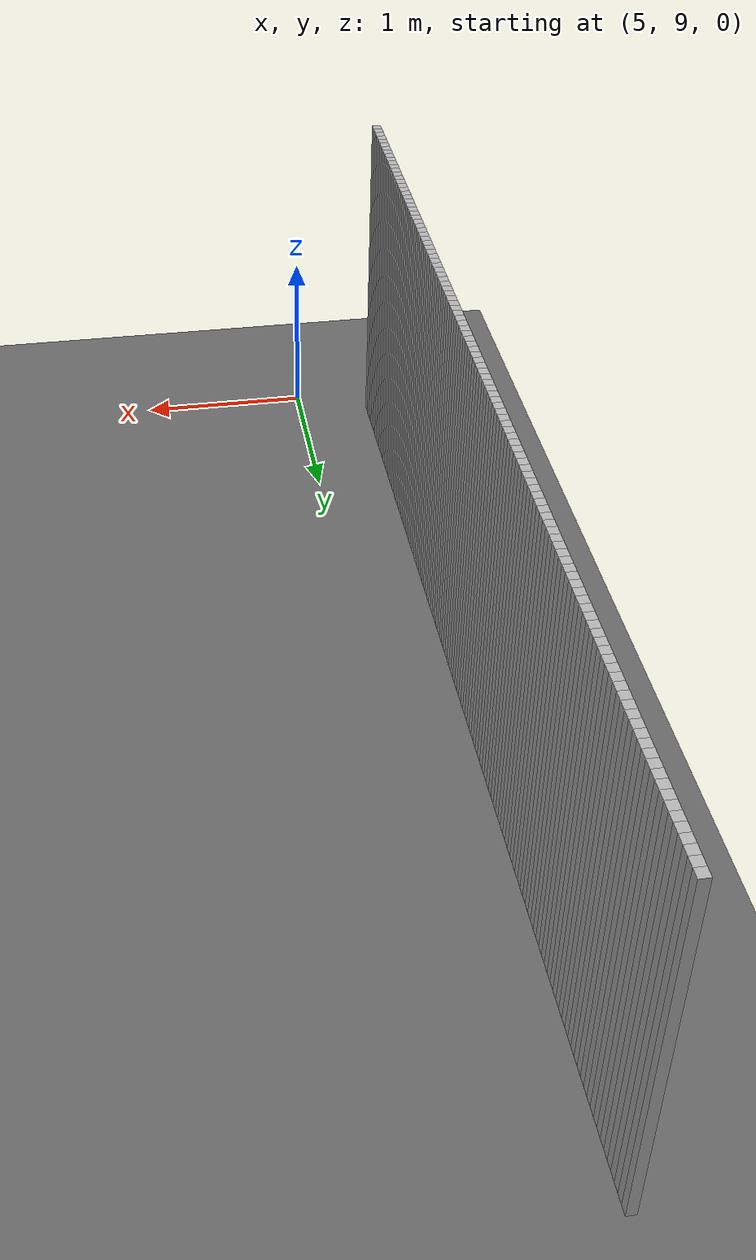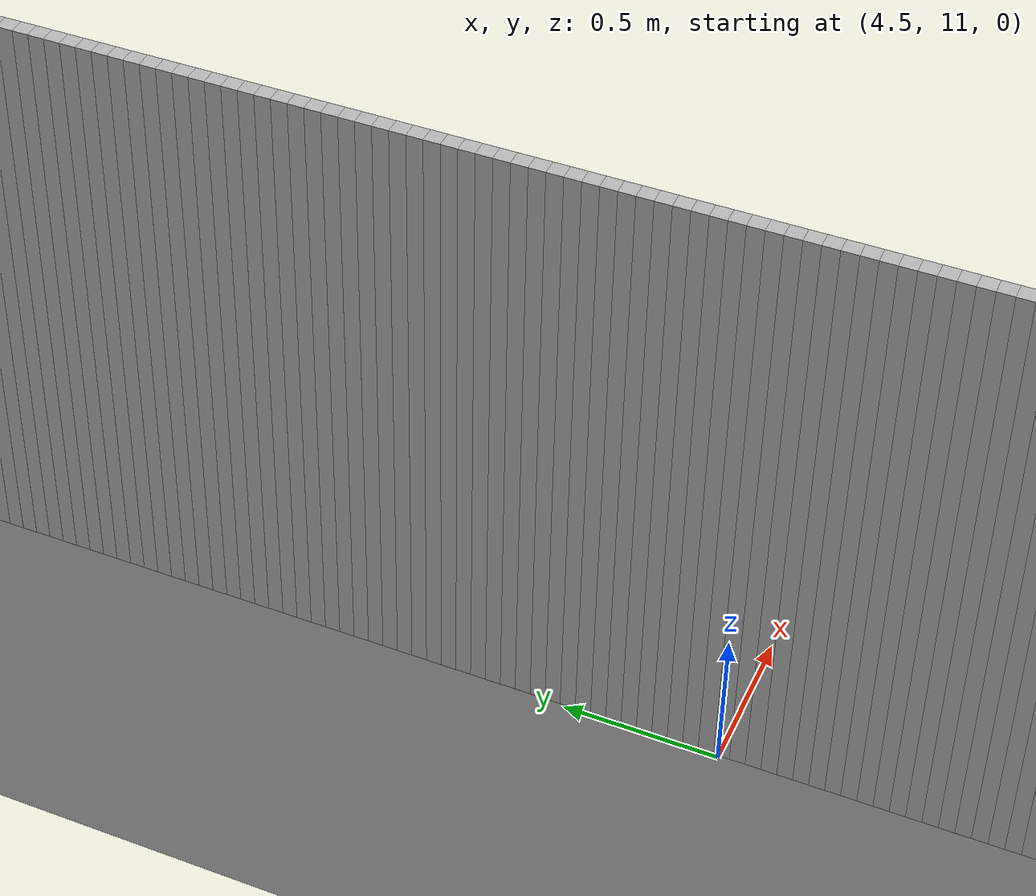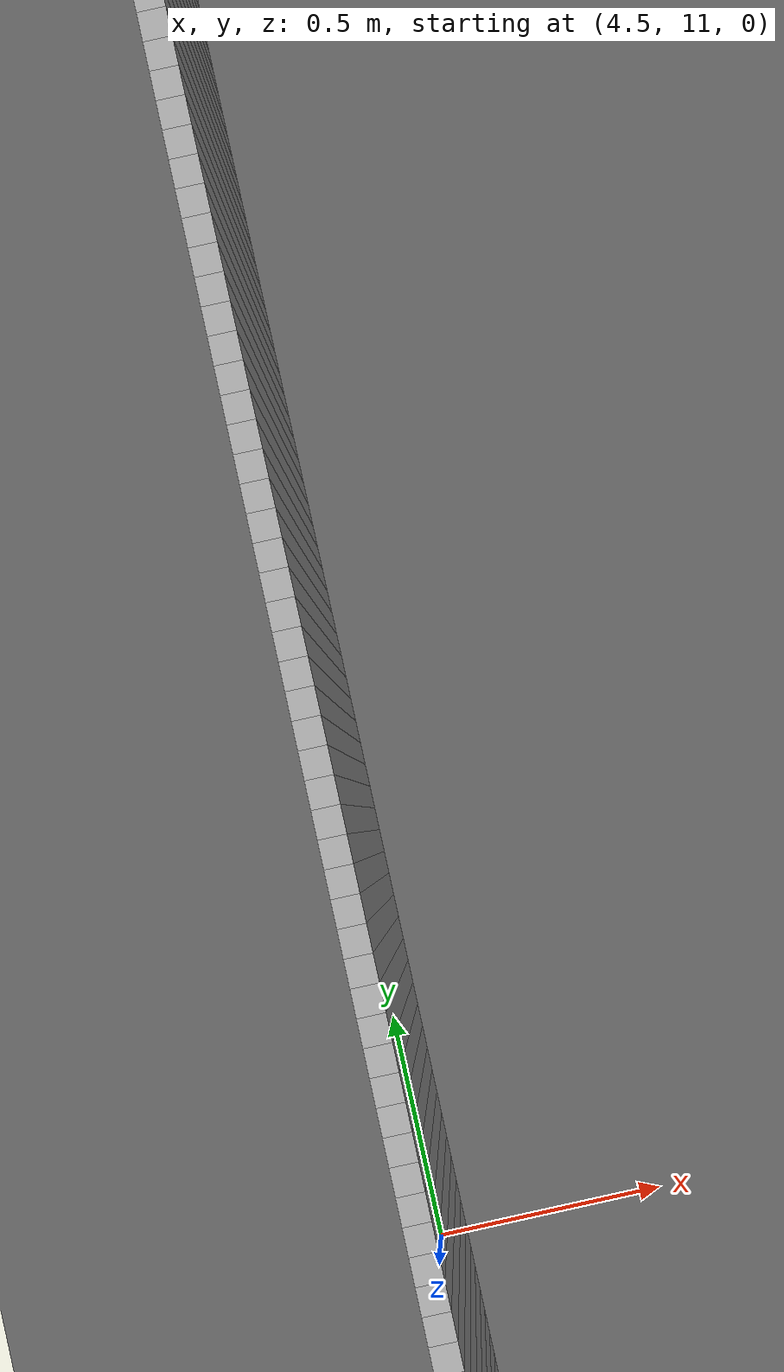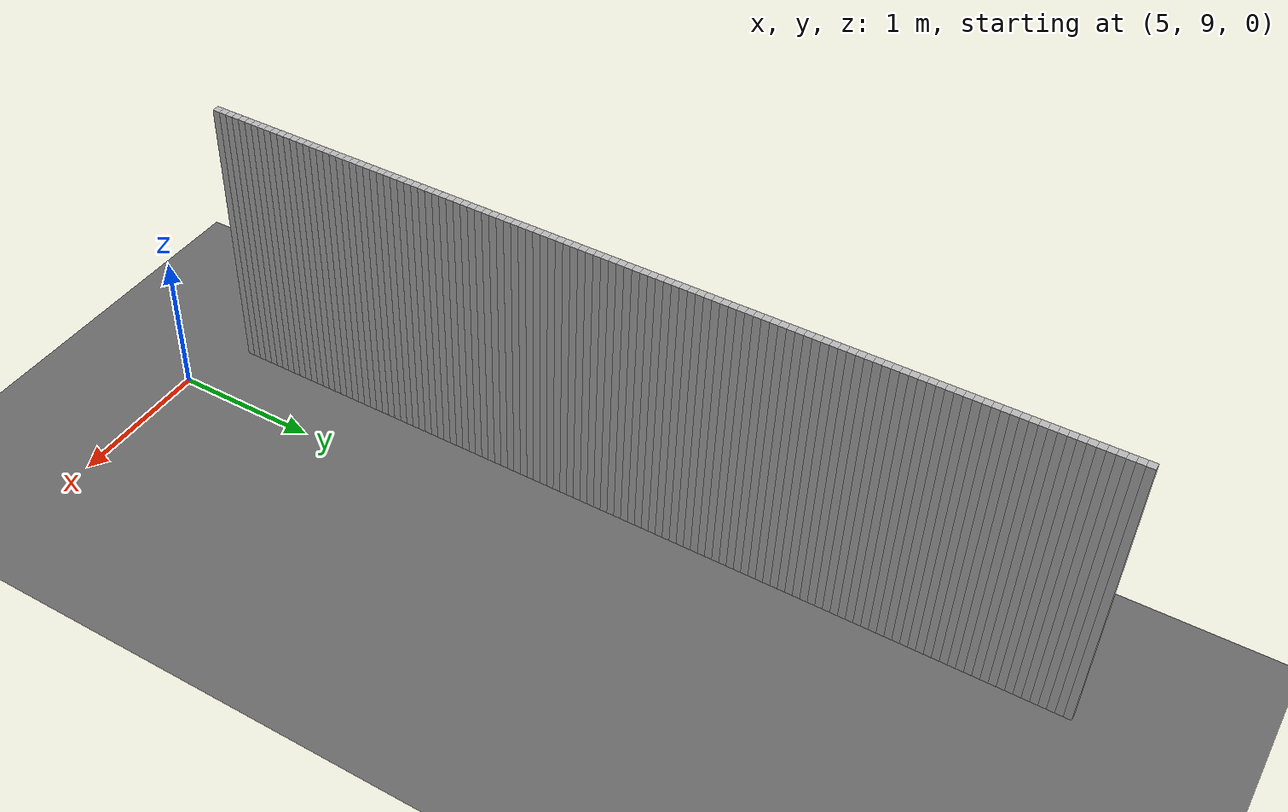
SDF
<sdf version="1.8">
 <world name="real_map">
  <model name="ground">
   <static>true</static>
   <link name="l">
    <collision name="c"><geometry><plane><normal>0 0 1</normal><size>100 100</size></plane></geometry></collision>
    <visual name="v">
     <geometry><plane><normal>0 0 1</normal><size>100 100</size></plane></geometry>
     <material><ambient>0.3 0.3 0.3 1</ambient><diffuse>0.4 0.4 0.4 1</diffuse></material>
    </visual>
   </link>
  </model>
  <model name="walls">
   <static>true</static>
   <link name="w242">
    <pose>4.534 15.092 1.000 0 0 0</pose>
    <collision name="c"><geometry><box><size>0.050 0.050 2.000</size></box></geometry></collision>
    <visual name="v">
     <geometry><box><size>0.050 0.050 2.000</size></box></geometry>
     <material><ambient>0.7 0.7 0.7 1</ambient><diffuse>0.7 0.7 0.7 1</diffuse></material>
    </visual>
   </link>
   <link name="w244">
    <pose>4.534 15.042 1.000 0 0 0</pose>
    <collision name="c"><geometry><box><size>0.050 0.050 2.000</size></box></geometry></collision>
    <visual name="v">
     <geometry><box><size>0.050 0.050 2.000</size></box></geometry>
     <material><ambient>0.7 0.7 0.7 1</ambient><diffuse>0.7 0.7 0.7 1</diffuse></material>
    </visual>
   </link>
   <link name="w246">
    <pose>4.534 14.992 1.000 0 0 0</pose>
    <collision name="c"><geometry><box><size>0.050 0.050 2.000</size></box></geometry></collision>
    <visual name="v">
     <geometry><box><size>0.050 0.050 2.000</size></box></geometry>
     <material><ambient>0.7 0.7 0.7 1</ambient><diffuse>0.7 0.7 0.7 1</diffuse></material>
    </visual>
   </link>
   <link name="w248">
    <pose>4.534 14.942 1.000 0 0 0</pose>
    <collision name="c"><geometry><box><size>0.050 0.050 2.000</size></box></geometry></collision>
    <visual name="v">
     <geometry><box><size>0.050 0.050 2.000</size></box></geometry>
     <material><ambient>0.7 0.7 0.7 1</ambient><diffuse>0.7 0.7 0.7 1</diffuse></material>
    </visual>
   </link>
   <link name="w250">
    <pose>4.534 14.892 1.000 0 0 0</pose>
    <collision name="c"><geometry><box><size>0.050 0.050 2.000</size></box></geometry></collision>
    <visual name="v">
     <geometry><box><size>0.050 0.050 2.000</size></box></geometry>
     <material><ambient>0.7 0.7 0.7 1</ambient><diffuse>0.7 0.7 0.7 1</diffuse></material>
    </visual>
   </link>
   <link name="w252">
    <pose>4.534 14.842 1.000 0 0 0</pose>
    <collision name="c"><geometry><box><size>0.050 0.050 2.000</size></box></geometry></collision>
    <visual name="v">
     <geometry><box><size>0.050 0.050 2.000</size></box></geometry>
     <material><ambient>0.7 0.7 0.7 1</ambient><diffuse>0.7 0.7 0.7 1</diffuse></material>
    </visual>
   </link>
   <link name="w254">
    <pose>4.534 14.792 1.000 0 0 0</pose>
    <collision name="c"><geometry><box><size>0.050 0.050 2.000</size></box></geometry></collision>
    <visual name="v">
     <geometry><box><size>0.050 0.050 2.000</size></box></geometry>
     <material><ambient>0.7 0.7 0.7 1</ambient><diffuse>0.7 0.7 0.7 1</diffuse></material>
    </visual>
   </link>
   <link name="w256">
    <pose>4.534 14.742 1.000 0 0 0</pose>
    <collision name="c"><geometry><box><size>0.050 0.050 2.000</size></box></geometry></collision>
    <visual name="v">
     <geometry><box><size>0.050 0.050 2.000</size></box></geometry>
     <material><ambient>0.7 0.7 0.7 1</ambient><diffuse>0.7 0.7 0.7 1</diffuse></material>
    </visual>
   </link>
   <link name="w258">
    <pose>4.534 14.692 1.000 0 0 0</pose>
    <collision name="c"><geometry><box><size>0.050 0.050 2.000</size></box></geometry></collision>
    <visual name="v">
     <geometry><box><size>0.050 0.050 2.000</size></box></geometry>
     <material><ambient>0.7 0.7 0.7 1</ambient><diffuse>0.7 0.7 0.7 1</diffuse></material>
    </visual>
   </link>
   <link name="w260">
    <pose>4.534 14.642 1.000 0 0 0</pose>
    <collision name="c"><geometry><box><size>0.050 0.050 2.000</size></box></geometry></collision>
    <visual name="v">
     <geometry><box><size>0.050 0.050 2.000</size></box></geometry>
     <material><ambient>0.7 0.7 0.7 1</ambient><diffuse>0.7 0.7 0.7 1</diffuse></material>
    </visual>
   </link>
   <link name="w262">
    <pose>4.534 14.592 1.000 0 0 0</pose>
    <collision name="c"><geometry><box><size>0.050 0.050 2.000</size></box></geometry></collision>
    <visual name="v">
     <geometry><box><size>0.050 0.050 2.000</size></box></geometry>
     <material><ambient>0.7 0.7 0.7 1</ambient><diffuse>0.7 0.7 0.7 1</diffuse></material>
    </visual>
   </link>
   <link name="w264">
    <pose>4.534 14.542 1.000 0 0 0</pose>
    <collision name="c"><geometry><box><size>0.050 0.050 2.000</size></box></geometry></collision>
    <visual name="v">
     <geometry><box><size>0.050 0.050 2.000</size></box></geometry>
     <material><ambient>0.7 0.7 0.7 1</ambient><diffuse>0.7 0.7 0.7 1</diffuse></material>
    </visual>
   </link>
   <link name="w266">
    <pose>4.534 14.492 1.000 0 0 0</pose>
    <collision name="c"><geometry><box><size>0.050 0.050 2.000</size></box></geometry></collision>
    <visual name="v">
     <geometry><box><size>0.050 0.050 2.000</size></box></geometry>
     <material><ambient>0.7 0.7 0.7 1</ambient><diffuse>0.7 0.7 0.7 1</diffuse></material>
    </visual>
   </link>
   <link name="w268">
    <pose>4.534 14.442 1.000 0 0 0</pose>
    <collision name="c"><geometry><box><size>0.050 0.050 2.000</size></box></geometry></collision>
    <visual name="v">
     <geometry><box><size>0.050 0.050 2.000</size></box></geometry>
     <material><ambient>0.7 0.7 0.7 1</ambient><diffuse>0.7 0.7 0.7 1</diffuse></material>
    </visual>
   </link>
   <link name="w270">
    <pose>4.534 14.392 1.000 0 0 0</pose>
    <collision name="c"><geometry><box><size>0.050 0.050 2.000</size></box></geometry></collision>
    <visual name="v">
     <geometry><box><size>0.050 0.050 2.000</size></box></geometry>
     <material><ambient>0.7 0.7 0.7 1</ambient><diffuse>0.7 0.7 0.7 1</diffuse></material>
    </visual>
   </link>
   <link name="w272">
    <pose>4.534 14.342 1.000 0 0 0</pose>
    <collision name="c"><geometry><box><size>0.050 0.050 2.000</size></box></geometry></collision>
    <visual name="v">
     <geometry><box><size>0.050 0.050 2.000</size></box></geometry>
     <material><ambient>0.7 0.7 0.7 1</ambient><diffuse>0.7 0.7 0.7 1</diffuse></material>
    </visual>
   </link>
   <link name="w274">
    <pose>4.534 14.292 1.000 0 0 0</pose>
    <collision name="c"><geometry><box><size>0.050 0.050 2.000</size></box></geometry></collision>
    <visual name="v">
     <geometry><box><size>0.050 0.050 2.000</size></box></geometry>
     <material><ambient>0.7 0.7 0.7 1</ambient><diffuse>0.7 0.7 0.7 1</diffuse></material>
    </visual>
   </link>
   <link name="w276">
    <pose>4.534 14.242 1.000 0 0 0</pose>
    <collision name="c"><geometry><box><size>0.050 0.050 2.000</size></box></geometry></collision>
    <visual name="v">
     <geometry><box><size>0.050 0.050 2.000</size></box></geometry>
     <material><ambient>0.7 0.7 0.7 1</ambient><diffuse>0.7 0.7 0.7 1</diffuse></material>
    </visual>
   </link>
   <link name="w278">
    <pose>4.534 14.192 1.000 0 0 0</pose>
    <collision name="c"><geometry><box><size>0.050 0.050 2.000</size></box></geometry></collision>
    <visual name="v">
     <geometry><box><size>0.050 0.050 2.000</size></box></geometry>
     <material><ambient>0.7 0.7 0.7 1</ambient><diffuse>0.7 0.7 0.7 1</diffuse></material>
    </visual>
   </link>
   <link name="w280">
    <pose>4.534 14.142 1.000 0 0 0</pose>
    <collision name="c"><geometry><box><size>0.050 0.050 2.000</size></box></geometry></collision>
    <visual name="v">
     <geometry><box><size>0.050 0.050 2.000</size></box></geometry>
     <material><ambient>0.7 0.7 0.7 1</ambient><diffuse>0.7 0.7 0.7 1</diffuse></material>
    </visual>
   </link>
   <link name="w282">
    <pose>4.534 14.092 1.000 0 0 0</pose>
    <collision name="c"><geometry><box><size>0.050 0.050 2.000</size></box></geometry></collision>
    <visual name="v">
     <geometry><box><size>0.050 0.050 2.000</size></box></geometry>
     <material><ambient>0.7 0.7 0.7 1</ambient><diffuse>0.7 0.7 0.7 1</diffuse></material>
    </visual>
   </link>
   <link name="w284">
    <pose>4.534 14.042 1.000 0 0 0</pose>
    <collision name="c"><geometry><box><size>0.050 0.050 2.000</size></box></geometry></collision>
    <visual name="v">
     <geometry><box><size>0.050 0.050 2.000</size></box></geometry>
     <material><ambient>0.7 0.7 0.7 1</ambient><diffuse>0.7 0.7 0.7 1</diffuse></material>
    </visual>
   </link>
   <link name="w286">
    <pose>4.534 13.992 1.000 0 0 0</pose>
    <collision name="c"><geometry><box><size>0.050 0.050 2.000</size></box></geometry></collision>
    <visual name="v">
     <geometry><box><size>0.050 0.050 2.000</size></box></geometry>
     <material><ambient>0.7 0.7 0.7 1</ambient><diffuse>0.7 0.7 0.7 1</diffuse></material>
    </visual>
   </link>
   <link name="w288">
    <pose>4.534 13.942 1.000 0 0 0</pose>
    <collision name="c"><geometry><box><size>0.050 0.050 2.000</size></box></geometry></collision>
    <visual name="v">
     <geometry><box><size>0.050 0.050 2.000</size></box></geometry>
     <material><ambient>0.7 0.7 0.7 1</ambient><diffuse>0.7 0.7 0.7 1</diffuse></material>
    </visual>
   </link>
   <link name="w290">
    <pose>4.534 13.892 1.000 0 0 0</pose>
    <collision name="c"><geometry><box><size>0.050 0.050 2.000</size></box></geometry></collision>
    <visual name="v">
     <geometry><box><size>0.050 0.050 2.000</size></box></geometry>
     <material><ambient>0.7 0.7 0.7 1</ambient><diffuse>0.7 0.7 0.7 1</diffuse></material>
    </visual>
   </link>
   <link name="w292">
    <pose>4.534 13.842 1.000 0 0 0</pose>
    <collision name="c"><geometry><box><size>0.050 0.050 2.000</size></box></geometry></collision>
    <visual name="v">
     <geometry><box><size>0.050 0.050 2.000</size></box></geometry>
     <material><ambient>0.7 0.7 0.7 1</ambient><diffuse>0.7 0.7 0.7 1</diffuse></material>
    </visual>
   </link>
   <link name="w294">
    <pose>4.534 13.792 1.000 0 0 0</pose>
    <collision name="c"><geometry><box><size>0.050 0.050 2.000</size></box></geometry></collision>
    <visual name="v">
     <geometry><box><size>0.050 0.050 2.000</size></box></geometry>
     <material><ambient>0.7 0.7 0.7 1</ambient><diffuse>0.7 0.7 0.7 1</diffuse></material>
    </visual>
   </link>
   <link name="w296">
    <pose>4.534 13.742 1.000 0 0 0</pose>
    <collision name="c"><geometry><box><size>0.050 0.050 2.000</size></box></geometry></collision>
    <visual name="v">
     <geometry><box><size>0.050 0.050 2.000</size></box></geometry>
     <material><ambient>0.7 0.7 0.7 1</ambient><diffuse>0.7 0.7 0.7 1</diffuse></material>
    </visual>
   </link>
   <link name="w298">
    <pose>4.534 13.692 1.000 0 0 0</pose>
    <collision name="c"><geometry><box><size>0.050 0.050 2.000</size></box></geometry></collision>
    <visual name="v">
     <geometry><box><size>0.050 0.050 2.000</size></box></geometry>
     <material><ambient>0.7 0.7 0.7 1</ambient><diffuse>0.7 0.7 0.7 1</diffuse></material>
    </visual>
   </link>
   <link name="w300">
    <pose>4.534 13.642 1.000 0 0 0</pose>
    <collision name="c"><geometry><box><size>0.050 0.050 2.000</size></box></geometry></collision>
    <visual name="v">
     <geometry><box><size>0.050 0.050 2.000</size></box></geometry>
     <material><ambient>0.7 0.7 0.7 1</ambient><diffuse>0.7 0.7 0.7 1</diffuse></material>
    </visual>
   </link>
   <link name="w302">
    <pose>4.534 13.592 1.000 0 0 0</pose>
    <collision name="c"><geometry><box><size>0.050 0.050 2.000</size></box></geometry></collision>
    <visual name="v">
     <geometry><box><size>0.050 0.050 2.000</size></box></geometry>
     <material><ambient>0.7 0.7 0.7 1</ambient><diffuse>0.7 0.7 0.7 1</diffuse></material>
    </visual>
   </link>
   <link name="w304">
    <pose>4.534 13.542 1.000 0 0 0</pose>
    <collision name="c"><geometry><box><size>0.050 0.050 2.000</size></box></geometry></collision>
    <visual name="v">
     <geometry><box><size>0.050 0.050 2.000</size></box></geometry>
     <material><ambient>0.7 0.7 0.7 1</ambient><diffuse>0.7 0.7 0.7 1</diffuse></material>
    </visual>
   </link>
   <link name="w306">
    <pose>4.534 13.492 1.000 0 0 0</pose>
    <collision name="c"><geometry><box><size>0.050 0.050 2.000</size></box></geometry></collision>
    <visual name="v">
     <geometry><box><size>0.050 0.050 2.000</size></box></geometry>
     <material><ambient>0.7 0.7 0.7 1</ambient><diffuse>0.7 0.7 0.7 1</diffuse></material>
    </visual>
   </link>
   <link name="w308">
    <pose>4.534 13.442 1.000 0 0 0</pose>
    <collision name="c"><geometry><box><size>0.050 0.050 2.000</size></box></geometry></collision>
    <visual name="v">
     <geometry><box><size>0.050 0.050 2.000</size></box></geometry>
     <material><ambient>0.7 0.7 0.7 1</ambient><diffuse>0.7 0.7 0.7 1</diffuse></material>
    </visual>
   </link>
   <link name="w310">
    <pose>4.534 13.392 1.000 0 0 0</pose>
    <collision name="c"><geometry><box><size>0.050 0.050 2.000</size></box></geometry></collision>
    <visual name="v">
     <geometry><box><size>0.050 0.050 2.000</size></box></geometry>
     <material><ambient>0.7 0.7 0.7 1</ambient><diffuse>0.7 0.7 0.7 1</diffuse></material>
    </visual>
   </link>
   <link name="w312">
    <pose>4.534 13.342 1.000 0 0 0</pose>
    <collision name="c"><geometry><box><size>0.050 0.050 2.000</size></box></geometry></collision>
    <visual name="v">
     <geometry><box><size>0.050 0.050 2.000</size></box></geometry>
     <material><ambient>0.7 0.7 0.7 1</ambient><diffuse>0.7 0.7 0.7 1</diffuse></material>
    </visual>
   </link>
   <link name="w314">
    <pose>4.534 13.292 1.000 0 0 0</pose>
    <collision name="c"><geometry><box><size>0.050 0.050 2.000</size></box></geometry></collision>
    <visual name="v">
     <geometry><box><size>0.050 0.050 2.000</size></box></geometry>
     <material><ambient>0.7 0.7 0.7 1</ambient><diffuse>0.7 0.7 0.7 1</diffuse></material>
    </visual>
   </link>
   <link name="w316">
    <pose>4.534 13.242 1.000 0 0 0</pose>
    <collision name="c"><geometry><box><size>0.050 0.050 2.000</size></box></geometry></collision>
    <visual name="v">
     <geometry><box><size>0.050 0.050 2.000</size></box></geometry>
     <material><ambient>0.7 0.7 0.7 1</ambient><diffuse>0.7 0.7 0.7 1</diffuse></material>
    </visual>
   </link>
   <link name="w318">
    <pose>4.534 13.192 1.000 0 0 0</pose>
    <collision name="c"><geometry><box><size>0.050 0.050 2.000</size></box></geometry></collision>
    <visual name="v">
     <geometry><box><size>0.050 0.050 2.000</size></box></geometry>
     <material><ambient>0.7 0.7 0.7 1</ambient><diffuse>0.7 0.7 0.7 1</diffuse></material>
    </visual>
   </link>
   <link name="w320">
    <pose>4.534 13.142 1.000 0 0 0</pose>
    <collision name="c"><geometry><box><size>0.050 0.050 2.000</size></box></geometry></collision>
    <visual name="v">
     <geometry><box><size>0.050 0.050 2.000</size></box></geometry>
     <material><ambient>0.7 0.7 0.7 1</ambient><diffuse>0.7 0.7 0.7 1</diffuse></material>
    </visual>
   </link>
   <link name="w322">
    <pose>4.534 13.092 1.000 0 0 0</pose>
    <collision name="c"><geometry><box><size>0.050 0.050 2.000</size></box></geometry></collision>
    <visual name="v">
     <geometry><box><size>0.050 0.050 2.000</size></box></geometry>
     <material><ambient>0.7 0.7 0.7 1</ambient><diffuse>0.7 0.7 0.7 1</diffuse></material>
    </visual>
   </link>
   <link name="w324">
    <pose>4.534 13.042 1.000 0 0 0</pose>
    <collision name="c"><geometry><box><size>0.050 0.050 2.000</size></box></geometry></collision>
    <visual name="v">
     <geometry><box><size>0.050 0.050 2.000</size></box></geometry>
     <material><ambient>0.7 0.7 0.7 1</ambient><diffuse>0.7 0.7 0.7 1</diffuse></material>
    </visual>
   </link>
   <link name="w326">
    <pose>4.534 12.992 1.000 0 0 0</pose>
    <collision name="c"><geometry><box><size>0.050 0.050 2.000</size></box></geometry></collision>
    <visual name="v">
     <geometry><box><size>0.050 0.050 2.000</size></box></geometry>
     <material><ambient>0.7 0.7 0.7 1</ambient><diffuse>0.7 0.7 0.7 1</diffuse></material>
    </visual>
   </link>
   <link name="w328">
    <pose>4.534 12.942 1.000 0 0 0</pose>
    <collision name="c"><geometry><box><size>0.050 0.050 2.000</size></box></geometry></collision>
    <visual name="v">
     <geometry><box><size>0.050 0.050 2.000</size></box></geometry>
     <material><ambient>0.7 0.7 0.7 1</ambient><diffuse>0.7 0.7 0.7 1</diffuse></material>
    </visual>
   </link>
   <link name="w330">
    <pose>4.534 12.892 1.000 0 0 0</pose>
    <collision name="c"><geometry><box><size>0.050 0.050 2.000</size></box></geometry></collision>
    <visual name="v">
     <geometry><box><size>0.050 0.050 2.000</size></box></geometry>
     <material><ambient>0.7 0.7 0.7 1</ambient><diffuse>0.7 0.7 0.7 1</diffuse></material>
    </visual>
   </link>
   <link name="w332">
    <pose>4.534 12.842 1.000 0 0 0</pose>
    <collision name="c"><geometry><box><size>0.050 0.050 2.000</size></box></geometry></collision>
    <visual name="v">
     <geometry><box><size>0.050 0.050 2.000</size></box></geometry>
     <material><ambient>0.7 0.7 0.7 1</ambient><diffuse>0.7 0.7 0.7 1</diffuse></material>
    </visual>
   </link>
   <link name="w334">
    <pose>4.534 12.792 1.000 0 0 0</pose>
    <collision name="c"><geometry><box><size>0.050 0.050 2.000</size></box></geometry></collision>
    <visual name="v">
     <geometry><box><size>0.050 0.050 2.000</size></box></geometry>
     <material><ambient>0.7 0.7 0.7 1</ambient><diffuse>0.7 0.7 0.7 1</diffuse></material>
    </visual>
   </link>
   <link name="w336">
    <pose>4.534 12.742 1.000 0 0 0</pose>
    <collision name="c"><geometry><box><size>0.050 0.050 2.000</size></box></geometry></collision>
    <visual name="v">
     <geometry><box><size>0.050 0.050 2.000</size></box></geometry>
     <material><ambient>0.7 0.7 0.7 1</ambient><diffuse>0.7 0.7 0.7 1</diffuse></material>
    </visual>
   </link>
   <link name="w338">
    <pose>4.534 12.692 1.000 0 0 0</pose>
    <collision name="c"><geometry><box><size>0.050 0.050 2.000</size></box></geometry></collision>
    <visual name="v">
     <geometry><box><size>0.050 0.050 2.000</size></box></geometry>
     <material><ambient>0.7 0.7 0.7 1</ambient><diffuse>0.7 0.7 0.7 1</diffuse></material>
    </visual>
   </link>
   <link name="w340">
    <pose>4.534 12.642 1.000 0 0 0</pose>
    <collision name="c"><geometry><box><size>0.050 0.050 2.000</size></box></geometry></collision>
    <visual name="v">
     <geometry><box><size>0.050 0.050 2.000</size></box></geometry>
     <material><ambient>0.7 0.7 0.7 1</ambient><diffuse>0.7 0.7 0.7 1</diffuse></material>
    </visual>
   </link>
   <link name="w342">
    <pose>4.534 12.592 1.000 0 0 0</pose>
    <collision name="c"><geometry><box><size>0.050 0.050 2.000</size></box></geometry></collision>
    <visual name="v">
     <geometry><box><size>0.050 0.050 2.000</size></box></geometry>
     <material><ambient>0.7 0.7 0.7 1</ambient><diffuse>0.7 0.7 0.7 1</diffuse></material>
    </visual>
   </link>
   <link name="w344">
    <pose>4.534 12.542 1.000 0 0 0</pose>
    <collision name="c"><geometry><box><size>0.050 0.050 2.000</size></box></geometry></collision>
    <visual name="v">
     <geometry><box><size>0.050 0.050 2.000</size></box></geometry>
     <material><ambient>0.7 0.7 0.7 1</ambient><diffuse>0.7 0.7 0.7 1</diffuse></material>
    </visual>
   </link>
   <link name="w346">
    <pose>4.534 12.492 1.000 0 0 0</pose>
    <collision name="c"><geometry><box><size>0.050 0.050 2.000</size></box></geometry></collision>
    <visual name="v">
     <geometry><box><size>0.050 0.050 2.000</size></box></geometry>
     <material><ambient>0.7 0.7 0.7 1</ambient><diffuse>0.7 0.7 0.7 1</diffuse></material>
    </visual>
   </link>
   <link name="w348">
    <pose>4.534 12.442 1.000 0 0 0</pose>
    <collision name="c"><geometry><box><size>0.050 0.050 2.000</size></box></geometry></collision>
    <visual name="v">
     <geometry><box><size>0.050 0.050 2.000</size></box></geometry>
     <material><ambient>0.7 0.7 0.7 1</ambient><diffuse>0.7 0.7 0.7 1</diffuse></material>
    </visual>
   </link>
   <link name="w350">
    <pose>4.534 12.392 1.000 0 0 0</pose>
    <collision name="c"><geometry><box><size>0.050 0.050 2.000</size></box></geometry></collision>
    <visual name="v">
     <geometry><box><size>0.050 0.050 2.000</size></box></geometry>
     <material><ambient>0.7 0.7 0.7 1</ambient><diffuse>0.7 0.7 0.7 1</diffuse></material>
    </visual>
   </link>
   <link name="w352">
    <pose>4.534 12.342 1.000 0 0 0</pose>
    <collision name="c"><geometry><box><size>0.050 0.050 2.000</size></box></geometry></collision>
    <visual name="v">
     <geometry><box><size>0.050 0.050 2.000</size></box></geometry>
     <material><ambient>0.7 0.7 0.7 1</ambient><diffuse>0.7 0.7 0.7 1</diffuse></material>
    </visual>
   </link>
   <link name="w354">
    <pose>4.534 12.292 1.000 0 0 0</pose>
    <collision name="c"><geometry><box><size>0.050 0.050 2.000</size></box></geometry></collision>
    <visual name="v">
     <geometry><box><size>0.050 0.050 2.000</size></box></geometry>
     <material><ambient>0.7 0.7 0.7 1</ambient><diffuse>0.7 0.7 0.7 1</diffuse></material>
    </visual>
   </link>
   <link name="w356">
    <pose>4.534 12.242 1.000 0 0 0</pose>
    <collision name="c"><geometry><box><size>0.050 0.050 2.000</size></box></geometry></collision>
    <visual name="v">
     <geometry><box><size>0.050 0.050 2.000</size></box></geometry>
     <material><ambient>0.7 0.7 0.7 1</ambient><diffuse>0.7 0.7 0.7 1</diffuse></material>
    </visual>
   </link>
   <link name="w358">
    <pose>4.534 12.192 1.000 0 0 0</pose>
    <collision name="c"><geometry><box><size>0.050 0.050 2.000</size></box></geometry></collision>
    <visual name="v">
     <geometry><box><size>0.050 0.050 2.000</size></box></geometry>
     <material><ambient>0.7 0.7 0.7 1</ambient><diffuse>0.7 0.7 0.7 1</diffuse></material>
    </visual>
   </link>
   <link name="w360">
    <pose>4.534 12.142 1.000 0 0 0</pose>
    <collision name="c"><geometry><box><size>0.050 0.050 2.000</size></box></geometry></collision>
    <visual name="v">
     <geometry><box><size>0.050 0.050 2.000</size></box></geometry>
     <material><ambient>0.7 0.7 0.7 1</ambient><diffuse>0.7 0.7 0.7 1</diffuse></material>
    </visual>
   </link>
   <link name="w362">
    <pose>4.534 12.092 1.000 0 0 0</pose>
    <collision name="c"><geometry><box><size>0.050 0.050 2.000</size></box></geometry></collision>
    <visual name="v">
     <geometry><box><size>0.050 0.050 2.000</size></box></geometry>
     <material><ambient>0.7 0.7 0.7 1</ambient><diffuse>0.7 0.7 0.7 1</diffuse></material>
    </visual>
   </link>
   <link name="w364">
    <pose>4.534 12.042 1.000 0 0 0</pose>
    <collision name="c"><geometry><box><size>0.050 0.050 2.000</size></box></geometry></collision>
    <visual name="v">
     <geometry><box><size>0.050 0.050 2.000</size></box></geometry>
     <material><ambient>0.7 0.7 0.7 1</ambient><diffuse>0.7 0.7 0.7 1</diffuse></material>
    </visual>
   </link>
   <link name="w366">
    <pose>4.534 11.992 1.000 0 0 0</pose>
    <collision name="c"><geometry><box><size>0.050 0.050 2.000</size></box></geometry></collision>
    <visual name="v">
     <geometry><box><size>0.050 0.050 2.000</size></box></geometry>
     <material><ambient>0.7 0.7 0.7 1</ambient><diffuse>0.7 0.7 0.7 1</diffuse></material>
    </visual>
   </link>
   <link name="w368">
    <pose>4.534 11.942 1.000 0 0 0</pose>
    <collision name="c"><geometry><box><size>0.050 0.050 2.000</size></box></geometry></collision>
    <visual name="v">
     <geometry><box><size>0.050 0.050 2.000</size></box></geometry>
     <material><ambient>0.7 0.7 0.7 1</ambient><diffuse>0.7 0.7 0.7 1</diffuse></material>
    </visual>
   </link>
   <link name="w370">
    <pose>4.534 11.892 1.000 0 0 0</pose>
    <collision name="c"><geometry><box><size>0.050 0.050 2.000</size></box></geometry></collision>
    <visual name="v">
     <geometry><box><size>0.050 0.050 2.000</size></box></geometry>
     <material><ambient>0.7 0.7 0.7 1</ambient><diffuse>0.7 0.7 0.7 1</diffuse></material>
    </visual>
   </link>
   <link name="w372">
    <pose>4.534 11.842 1.000 0 0 0</pose>
    <collision name="c"><geometry><box><size>0.050 0.050 2.000</size></box></geometry></collision>
    <visual name="v">
     <geometry><box><size>0.050 0.050 2.000</size></box></geometry>
     <material><ambient>0.7 0.7 0.7 1</ambient><diffuse>0.7 0.7 0.7 1</diffuse></material>
    </visual>
   </link>
   <link name="w374">
    <pose>4.534 11.792 1.000 0 0 0</pose>
    <collision name="c"><geometry><box><size>0.050 0.050 2.000</size></box></geometry></collision>
    <visual name="v">
     <geometry><box><size>0.050 0.050 2.000</size></box></geometry>
     <material><ambient>0.7 0.7 0.7 1</ambient><diffuse>0.7 0.7 0.7 1</diffuse></material>
    </visual>
   </link>
   <link name="w376">
    <pose>4.534 11.742 1.000 0 0 0</pose>
    <collision name="c"><geometry><box><size>0.050 0.050 2.000</size></box></geometry></collision>
    <visual name="v">
     <geometry><box><size>0.050 0.050 2.000</size></box></geometry>
     <material><ambient>0.7 0.7 0.7 1</ambient><diffuse>0.7 0.7 0.7 1</diffuse></material>
    </visual>
   </link>
   <link name="w378">
    <pose>4.534 11.692 1.000 0 0 0</pose>
    <collision name="c"><geometry><box><size>0.050 0.050 2.000</size></box></geometry></collision>
    <visual name="v">
     <geometry><box><size>0.050 0.050 2.000</size></box></geometry>
     <material><ambient>0.7 0.7 0.7 1</ambient><diffuse>0.7 0.7 0.7 1</diffuse></material>
    </visual>
   </link>
   <link name="w380">
    <pose>4.534 11.642 1.000 0 0 0</pose>
    <collision name="c"><geometry><box><size>0.050 0.050 2.000</size></box></geometry></collision>
    <visual name="v">
     <geometry><box><size>0.050 0.050 2.000</size></box></geometry>
     <material><ambient>0.7 0.7 0.7 1</ambient><diffuse>0.7 0.7 0.7 1</diffuse></material>
    </visual>
   </link>
   <link name="w382">
    <pose>4.534 11.592 1.000 0 0 0</pose>
    <collision name="c"><geometry><box><size>0.050 0.050 2.000</size></box></geometry></collision>
    <visual name="v">
     <geometry><box><size>0.050 0.050 2.000</size></box></geometry>
     <material><ambient>0.7 0.7 0.7 1</ambient><diffuse>0.7 0.7 0.7 1</diffuse></material>
    </visual>
   </link>
   <link name="w384">
    <pose>4.534 11.542 1.000 0 0 0</pose>
    <collision name="c"><geometry><box><size>0.050 0.050 2.000</size></box></geometry></collision>
    <visual name="v">
     <geometry><box><size>0.050 0.050 2.000</size></box></geometry>
     <material><ambient>0.7 0.7 0.7 1</ambient><diffuse>0.7 0.7 0.7 1</diffuse></material>
    </visual>
   </link>
   <link name="w386">
    <pose>4.534 11.492 1.000 0 0 0</pose>
    <collision name="c"><geometry><box><size>0.050 0.050 2.000</size></box></geometry></collision>
    <visual name="v">
     <geometry><box><size>0.050 0.050 2.000</size></box></geometry>
     <material><ambient>0.7 0.7 0.7 1</ambient><diffuse>0.7 0.7 0.7 1</diffuse></material>
    </visual>
   </link>
   <link name="w388">
    <pose>4.534 11.442 1.000 0 0 0</pose>
    <collision name="c"><geometry><box><size>0.050 0.050 2.000</size></box></geometry></collision>
    <visual name="v">
     <geometry><box><size>0.050 0.050 2.000</size></box></geometry>
     <material><ambient>0.7 0.7 0.7 1</ambient><diffuse>0.7 0.7 0.7 1</diffuse></material>
    </visual>
   </link>
   <link name="w390">
    <pose>4.534 11.392 1.000 0 0 0</pose>
    <collision name="c"><geometry><box><size>0.050 0.050 2.000</size></box></geometry></collision>
    <visual name="v">
     <geometry><box><size>0.050 0.050 2.000</size></box></geometry>
     <material><ambient>0.7 0.7 0.7 1</ambient><diffuse>0.7 0.7 0.7 1</diffuse></material>
    </visual>
   </link>
   <link name="w392">
    <pose>4.534 11.342 1.000 0 0 0</pose>
    <collision name="c"><geometry><box><size>0.050 0.050 2.000</size></box></geometry></collision>
    <visual name="v">
     <geometry><box><size>0.050 0.050 2.000</size></box></geometry>
     <material><ambient>0.7 0.7 0.7 1</ambient><diffuse>0.7 0.7 0.7 1</diffuse></material>
    </visual>
   </link>
   <link name="w394">
    <pose>4.534 11.292 1.000 0 0 0</pose>
    <collision name="c"><geometry><box><size>0.050 0.050 2.000</size></box></geometry></collision>
    <visual name="v">
     <geometry><box><size>0.050 0.050 2.000</size></box></geometry>
     <material><ambient>0.7 0.7 0.7 1</ambient><diffuse>0.7 0.7 0.7 1</diffuse></material>
    </visual>
   </link>
   <link name="w396">
    <pose>4.534 11.242 1.000 0 0 0</pose>
    <collision name="c"><geometry><box><size>0.050 0.050 2.000</size></box></geometry></collision>
    <visual name="v">
     <geometry><box><size>0.050 0.050 2.000</size></box></geometry>
     <material><ambient>0.7 0.7 0.7 1</ambient><diffuse>0.7 0.7 0.7 1</diffuse></material>
    </visual>
   </link>
   <link name="w398">
    <pose>4.534 11.192 1.000 0 0 0</pose>
    <collision name="c"><geometry><box><size>0.050 0.050 2.000</size></box></geometry></collision>
    <visual name="v">
     <geometry><box><size>0.050 0.050 2.000</size></box></geometry>
     <material><ambient>0.7 0.7 0.7 1</ambient><diffuse>0.7 0.7 0.7 1</diffuse></material>
    </visual>
   </link>
   <link name="w400">
    <pose>4.534 11.142 1.000 0 0 0</pose>
    <collision name="c"><geometry><box><size>0.050 0.050 2.000</size></box></geometry></collision>
    <visual name="v">
     <geometry><box><size>0.050 0.050 2.000</size></box></geometry>
     <material><ambient>0.7 0.7 0.7 1</ambient><diffuse>0.7 0.7 0.7 1</diffuse></material>
    </visual>
   </link>
   <link name="w402">
    <pose>4.534 11.092 1.000 0 0 0</pose>
    <collision name="c"><geometry><box><size>0.050 0.050 2.000</size></box></geometry></collision>
    <visual name="v">
     <geometry><box><size>0.050 0.050 2.000</size></box></geometry>
     <material><ambient>0.7 0.7 0.7 1</ambient><diffuse>0.7 0.7 0.7 1</diffuse></material>
    </visual>
   </link>
   <link name="w404">
    <pose>4.534 11.042 1.000 0 0 0</pose>
    <collision name="c"><geometry><box><size>0.050 0.050 2.000</size></box></geometry></collision>
    <visual name="v">
     <geometry><box><size>0.050 0.050 2.000</size></box></geometry>
     <material><ambient>0.7 0.7 0.7 1</ambient><diffuse>0.7 0.7 0.7 1</diffuse></material>
    </visual>
   </link>
   <link name="w406">
    <pose>4.534 10.992 1.000 0 0 0</pose>
    <collision name="c"><geometry><box><size>0.050 0.050 2.000</size></box></geometry></collision>
    <visual name="v">
     <geometry><box><size>0.050 0.050 2.000</size></box></geometry>
     <material><ambient>0.7 0.7 0.7 1</ambient><diffuse>0.7 0.7 0.7 1</diffuse></material>
    </visual>
   </link>
   <link name="w408">
    <pose>4.534 10.942 1.000 0 0 0</pose>
    <collision name="c"><geometry><box><size>0.050 0.050 2.000</size></box></geometry></collision>
    <visual name="v">
     <geometry><box><size>0.050 0.050 2.000</size></box></geometry>
     <material><ambient>0.7 0.7 0.7 1</ambient><diffuse>0.7 0.7 0.7 1</diffuse></material>
    </visual>
   </link>
   <link name="w410">
    <pose>4.534 10.892 1.000 0 0 0</pose>
    <collision name="c"><geometry><box><size>0.050 0.050 2.000</size></box></geometry></collision>
    <visual name="v">
     <geometry><box><size>0.050 0.050 2.000</size></box></geometry>
     <material><ambient>0.7 0.7 0.7 1</ambient><diffuse>0.7 0.7 0.7 1</diffuse></material>
    </visual>
   </link>
   <link name="w412">
    <pose>4.534 10.842 1.000 0 0 0</pose>
    <collision name="c"><geometry><box><size>0.050 0.050 2.000</size></box></geometry></collision>
    <visual name="v">
     <geometry><box><size>0.050 0.050 2.000</size></box></geometry>
     <material><ambient>0.7 0.7 0.7 1</ambient><diffuse>0.7 0.7 0.7 1</diffuse></material>
    </visual>
   </link>
   <link name="w414">
    <pose>4.534 10.792 1.000 0 0 0</pose>
    <collision name="c"><geometry><box><size>0.050 0.050 2.000</size></box></geometry></collision>
    <visual name="v">
     <geometry><box><size>0.050 0.050 2.000</size></box></geometry>
     <material><ambient>0.7 0.7 0.7 1</ambient><diffuse>0.7 0.7 0.7 1</diffuse></material>
    </visual>
   </link>
   <link name="w416">
    <pose>4.534 10.742 1.000 0 0 0</pose>
    <collision name="c"><geometry><box><size>0.050 0.050 2.000</size></box></geometry></collision>
    <visual name="v">
     <geometry><box><size>0.050 0.050 2.000</size></box></geometry>
     <material><ambient>0.7 0.7 0.7 1</ambient><diffuse>0.7 0.7 0.7 1</diffuse></material>
    </visual>
   </link>
   <link name="w418">
    <pose>4.534 10.692 1.000 0 0 0</pose>
    <collision name="c"><geometry><box><size>0.050 0.050 2.000</size></box></geometry></collision>
    <visual name="v">
     <geometry><box><size>0.050 0.050 2.000</size></box></geometry>
     <material><ambient>0.7 0.7 0.7 1</ambient><diffuse>0.7 0.7 0.7 1</diffuse></material>
    </visual>
   </link>
   <link name="w420">
    <pose>4.534 10.642 1.000 0 0 0</pose>
    <collision name="c"><geometry><box><size>0.050 0.050 2.000</size></box></geometry></collision>
    <visual name="v">
     <geometry><box><size>0.050 0.050 2.000</size></box></geometry>
     <material><ambient>0.7 0.7 0.7 1</ambient><diffuse>0.7 0.7 0.7 1</diffuse></material>
    </visual>
   </link>
   <link name="w422">
    <pose>4.534 10.592 1.000 0 0 0</pose>
    <collision name="c"><geometry><box><size>0.050 0.050 2.000</size></box></geometry></collision>
    <visual name="v">
     <geometry><box><size>0.050 0.050 2.000</size></box></geometry>
     <material><ambient>0.7 0.7 0.7 1</ambient><diffuse>0.7 0.7 0.7 1</diffuse></material>
    </visual>
   </link>
   <link name="w424">
    <pose>4.534 10.542 1.000 0 0 0</pose>
    <collision name="c"><geometry><box><size>0.050 0.050 2.000</size></box></geometry></collision>
    <visual name="v">
     <geometry><box><size>0.050 0.050 2.000</size></box></geometry>
     <material><ambient>0.7 0.7 0.7 1</ambient><diffuse>0.7 0.7 0.7 1</diffuse></material>
    </visual>
   </link>
   <link name="w426">
    <pose>4.534 10.492 1.000 0 0 0</pose>
    <collision name="c"><geometry><box><size>0.050 0.050 2.000</size></box></geometry></collision>
    <visual name="v">
     <geometry><box><size>0.050 0.050 2.000</size></box></geometry>
     <material><ambient>0.7 0.7 0.7 1</ambient><diffuse>0.7 0.7 0.7 1</diffuse></material>
    </visual>
   </link>
   <link name="w428">
    <pose>4.534 10.442 1.000 0 0 0</pose>
    <collision name="c"><geometry><box><size>0.050 0.050 2.000</size></box></geometry></collision>
    <visual name="v">
     <geometry><box><size>0.050 0.050 2.000</size></box></geometry>
     <material><ambient>0.7 0.7 0.7 1</ambient><diffuse>0.7 0.7 0.7 1</diffuse></material>
    </visual>
   </link>
   <link name="w430">
    <pose>4.534 10.392 1.000 0 0 0</pose>
    <collision name="c"><geometry><box><size>0.050 0.050 2.000</size></box></geometry></collision>
    <visual name="v">
     <geometry><box><size>0.050 0.050 2.000</size></box></geometry>
     <material><ambient>0.7 0.7 0.7 1</ambient><diffuse>0.7 0.7 0.7 1</diffuse></material>
    </visual>
   </link>
   <link name="w432">
    <pose>4.534 10.342 1.000 0 0 0</pose>
    <collision name="c"><geometry><box><size>0.050 0.050 2.000</size></box></geometry></collision>
    <visual name="v">
     <geometry><box><size>0.050 0.050 2.000</size></box></geometry>
     <material><ambient>0.7 0.7 0.7 1</ambient><diffuse>0.7 0.7 0.7 1</diffuse></material>
    </visual>
   </link>
   <link name="w434">
    <pose>4.534 10.292 1.000 0 0 0</pose>
    <collision name="c"><geometry><box><size>0.050 0.050 2.000</size></box></geometry></collision>
    <visual name="v">
     <geometry><box><size>0.050 0.050 2.000</size></box></geometry>
     <material><ambient>0.7 0.7 0.7 1</ambient><diffuse>0.7 0.7 0.7 1</diffuse></material>
    </visual>
   </link>
   <link name="w436">
    <pose>4.534 10.242 1.000 0 0 0</pose>
    <collision name="c"><geometry><box><size>0.050 0.050 2.000</size></box></geometry></collision>
    <visual name="v">
     <geometry><box><size>0.050 0.050 2.000</size></box></geometry>
     <material><ambient>0.7 0.7 0.7 1</ambient><diffuse>0.7 0.7 0.7 1</diffuse></material>
    </visual>
   </link>
   <link name="w438">
    <pose>4.534 10.192 1.000 0 0 0</pose>
    <collision name="c"><geometry><box><size>0.050 0.050 2.000</size></box></geometry></collision>
    <visual name="v">
     <geometry><box><size>0.050 0.050 2.000</size></box></geometry>
     <material><ambient>0.7 0.7 0.7 1</ambient><diffuse>0.7 0.7 0.7 1</diffuse></material>
    </visual>
   </link>
   <link name="w440">
    <pose>4.534 10.142 1.000 0 0 0</pose>
    <collision name="c"><geometry><box><size>0.050 0.050 2.000</size></box></geometry></collision>
    <visual name="v">
     <geometry><box><size>0.050 0.050 2.000</size></box></geometry>
     <material><ambient>0.7 0.7 0.7 1</ambient><diffuse>0.7 0.7 0.7 1</diffuse></material>
    </visual>
   </link>
   <link name="w442">
    <pose>4.534 10.092 1.000 0 0 0</pose>
    <collision name="c"><geometry><box><size>0.050 0.050 2.000</size></box></geometry></collision>
    <visual name="v">
     <geometry><box><size>0.050 0.050 2.000</size></box></geometry>
     <material><ambient>0.7 0.7 0.7 1</ambient><diffuse>0.7 0.7 0.7 1</diffuse></material>
    </visual>
   </link>
   <link name="w444">
    <pose>4.534 10.042 1.000 0 0 0</pose>
    <collision name="c"><geometry><box><size>0.050 0.050 2.000</size></box></geometry></collision>
    <visual name="v">
     <geometry><box><size>0.050 0.050 2.000</size></box></geometry>
     <material><ambient>0.7 0.7 0.7 1</ambient><diffuse>0.7 0.7 0.7 1</diffuse></material>
    </visual>
   </link>
   <link name="w446">
    <pose>4.534 9.992 1.000 0 0 0</pose>
    <collision name="c"><geometry><box><size>0.050 0.050 2.000</size></box></geometry></collision>
    <visual name="v">
     <geometry><box><size>0.050 0.050 2.000</size></box></geometry>
     <material><ambient>0.7 0.7 0.7 1</ambient><diffuse>0.7 0.7 0.7 1</diffuse></material>
    </visual>
   </link>
   <link name="w448">
    <pose>4.534 9.942 1.000 0 0 0</pose>
    <collision name="c"><geometry><box><size>0.050 0.050 2.000</size></box></geometry></collision>
    <visual name="v">
     <geometry><box><size>0.050 0.050 2.000</size></box></geometry>
     <material><ambient>0.7 0.7 0.7 1</ambient><diffuse>0.7 0.7 0.7 1</diffuse></material>
    </visual>
   </link>
   <link name="w450">
    <pose>4.534 9.892 1.000 0 0 0</pose>
    <collision name="c"><geometry><box><size>0.050 0.050 2.000</size></box></geometry></collision>
    <visual name="v">
     <geometry><box><size>0.050 0.050 2.000</size></box></geometry>
     <material><ambient>0.7 0.7 0.7 1</ambient><diffuse>0.7 0.7 0.7 1</diffuse></material>
    </visual>
   </link>
   <link name="w452">
    <pose>4.534 9.842 1.000 0 0 0</pose>
    <collision name="c"><geometry><box><size>0.050 0.050 2.000</size></box></geometry></collision>
    <visual name="v">
     <geometry><box><size>0.050 0.050 2.000</size></box></geometry>
     <material><ambient>0.7 0.7 0.7 1</ambient><diffuse>0.7 0.7 0.7 1</diffuse></material>
    </visual>
   </link>
   <link name="w454">
    <pose>4.534 9.792 1.000 0 0 0</pose>
    <collision name="c"><geometry><box><size>0.050 0.050 2.000</size></box></geometry></collision>
    <visual name="v">
     <geometry><box><size>0.050 0.050 2.000</size></box></geometry>
     <material><ambient>0.7 0.7 0.7 1</ambient><diffuse>0.7 0.7 0.7 1</diffuse></material>
    </visual>
   </link>
   <link name="w456">
    <pose>4.534 9.742 1.000 0 0 0</pose>
    <collision name="c"><geometry><box><size>0.050 0.050 2.000</size></box></geometry></collision>
    <visual name="v">
     <geometry><box><size>0.050 0.050 2.000</size></box></geometry>
     <material><ambient>0.7 0.7 0.7 1</ambient><diffuse>0.7 0.7 0.7 1</diffuse></material>
    </visual>
   </link>
   <link name="w458">
    <pose>4.534 9.692 1.000 0 0 0</pose>
    <collision name="c"><geometry><box><size>0.050 0.050 2.000</size></box></geometry></collision>
    <visual name="v">
     <geometry><box><size>0.050 0.050 2.000</size></box></geometry>
     <material><ambient>0.7 0.7 0.7 1</ambient><diffuse>0.7 0.7 0.7 1</diffuse></material>
    </visual>
   </link>
   <link name="w460">
    <pose>4.534 9.642 1.000 0 0 0</pose>
    <collision name="c"><geometry><box><size>0.050 0.050 2.000</size></box></geometry></collision>
    <visual name="v">
     <geometry><box><size>0.050 0.050 2.000</size></box></geometry>
     <material><ambient>0.7 0.7 0.7 1</ambient><diffuse>0.7 0.7 0.7 1</diffuse></material>
    </visual>
   </link>
   <link name="w462">
    <pose>4.534 9.592 1.000 0 0 0</pose>
    <collision name="c"><geometry><box><size>0.050 0.050 2.000</size></box></geometry></collision>
    <visual name="v">
     <geometry><box><size>0.050 0.050 2.000</size></box></geometry>
     <material><ambient>0.7 0.7 0.7 1</ambient><diffuse>0.7 0.7 0.7 1</diffuse></material>
    </visual>
   </link>
   <link name="w464">
    <pose>4.534 9.542 1.000 0 0 0</pose>
    <collision name="c"><geometry><box><size>0.050 0.050 2.000</size></box></geometry></collision>
    <visual name="v">
     <geometry><box><size>0.050 0.050 2.000</size></box></geometry>
     <material><ambient>0.7 0.7 0.7 1</ambient><diffuse>0.7 0.7 0.7 1</diffuse></material>
    </visual>
   </link>
   <link name="w466">
    <pose>4.534 9.492 1.000 0 0 0</pose>
    <collision name="c"><geometry><box><size>0.050 0.050 2.000</size></box></geometry></collision>
    <visual name="v">
     <geometry><box><size>0.050 0.050 2.000</size></box></geometry>
     <material><ambient>0.7 0.7 0.7 1</ambient><diffuse>0.7 0.7 0.7 1</diffuse></material>
    </visual>
   </link>
   <link name="w468">
    <pose>4.534 9.442 1.000 0 0 0</pose>
    <collision name="c"><geometry><box><size>0.050 0.050 2.000</size></box></geometry></collision>
    <visual name="v">
     <geometry><box><size>0.050 0.050 2.000</size></box></geometry>
     <material><ambient>0.7 0.7 0.7 1</ambient><diffuse>0.7 0.7 0.7 1</diffuse></material>
    </visual>
   </link>
   <link name="w470">
    <pose>4.534 9.392 1.000 0 0 0</pose>
    <collision name="c"><geometry><box><size>0.050 0.050 2.000</size></box></geometry></collision>
    <visual name="v">
     <geometry><box><size>0.050 0.050 2.000</size></box></geometry>
     <material><ambient>0.7 0.7 0.7 1</ambient><diffuse>0.7 0.7 0.7 1</diffuse></material>
    </visual>
   </link>
   <link name="w472">
    <pose>4.534 9.342 1.000 0 0 0</pose>
    <collision name="c"><geometry><box><size>0.050 0.050 2.000</size></box></geometry></collision>
    <visual name="v">
     <geometry><box><size>0.050 0.050 2.000</size></box></geometry>
     <material><ambient>0.7 0.7 0.7 1</ambient><diffuse>0.7 0.7 0.7 1</diffuse></material>
    </visual>
   </link>
   <link name="w474">
    <pose>4.534 9.292 1.000 0 0 0</pose>
    <collision name="c"><geometry><box><size>0.050 0.050 2.000</size></box></geometry></collision>
    <visual name="v">
     <geometry><box><size>0.050 0.050 2.000</size></box></geometry>
     <material><ambient>0.7 0.7 0.7 1</ambient><diffuse>0.7 0.7 0.7 1</diffuse></material>
    </visual>
   </link>
   <link name="w476">
    <pose>4.534 9.242 1.000 0 0 0</pose>
    <collision name="c"><geometry><box><size>0.050 0.050 2.000</size></box></geometry></collision>
    <visual name="v">
     <geometry><box><size>0.050 0.050 2.000</size></box></geometry>
     <material><ambient>0.7 0.7 0.7 1</ambient><diffuse>0.7 0.7 0.7 1</diffuse></material>
    </visual>
   </link>
   <link name="w478">
    <pose>4.534 9.192 1.000 0 0 0</pose>
    <collision name="c"><geometry><box><size>0.050 0.050 2.000</size></box></geometry></collision>
    <visual name="v">
     <geometry><box><size>0.050 0.050 2.000</size></box></geometry>
     <material><ambient>0.7 0.7 0.7 1</ambient><diffuse>0.7 0.7 0.7 1</diffuse></material>
    </visual>
   </link>
  </model>
 </world>
</sdf>
